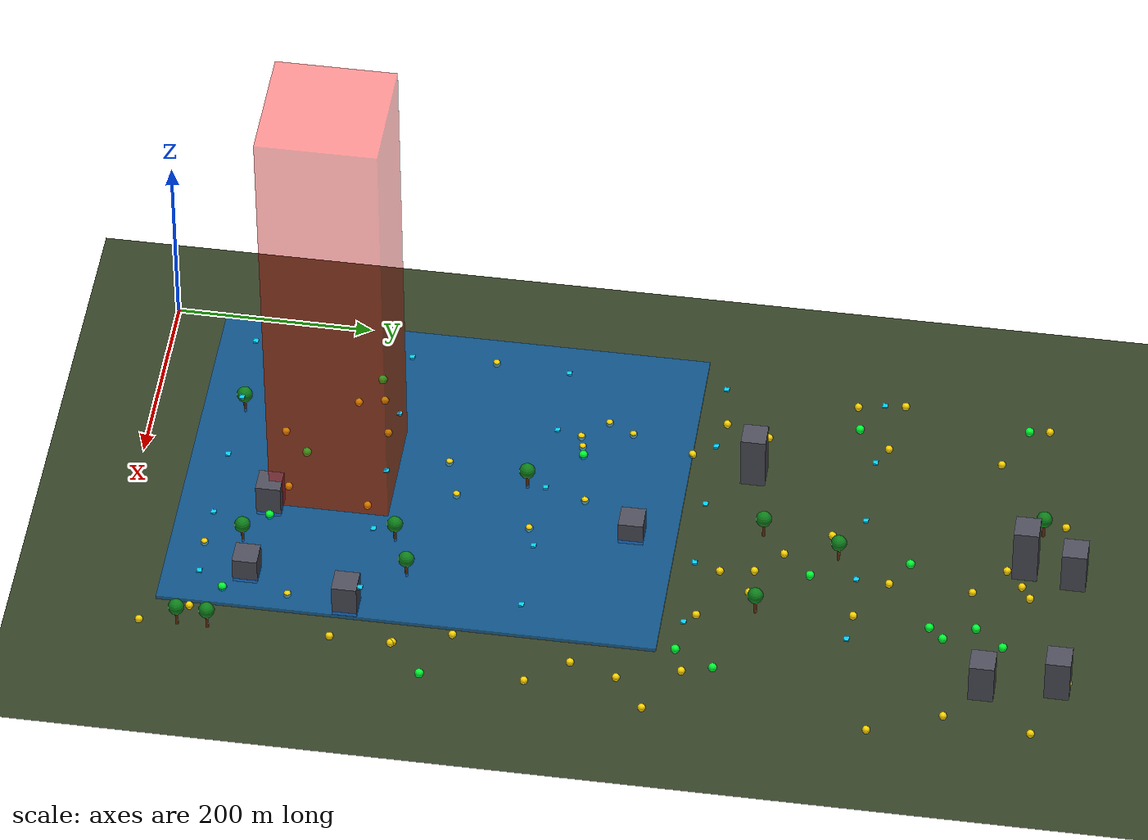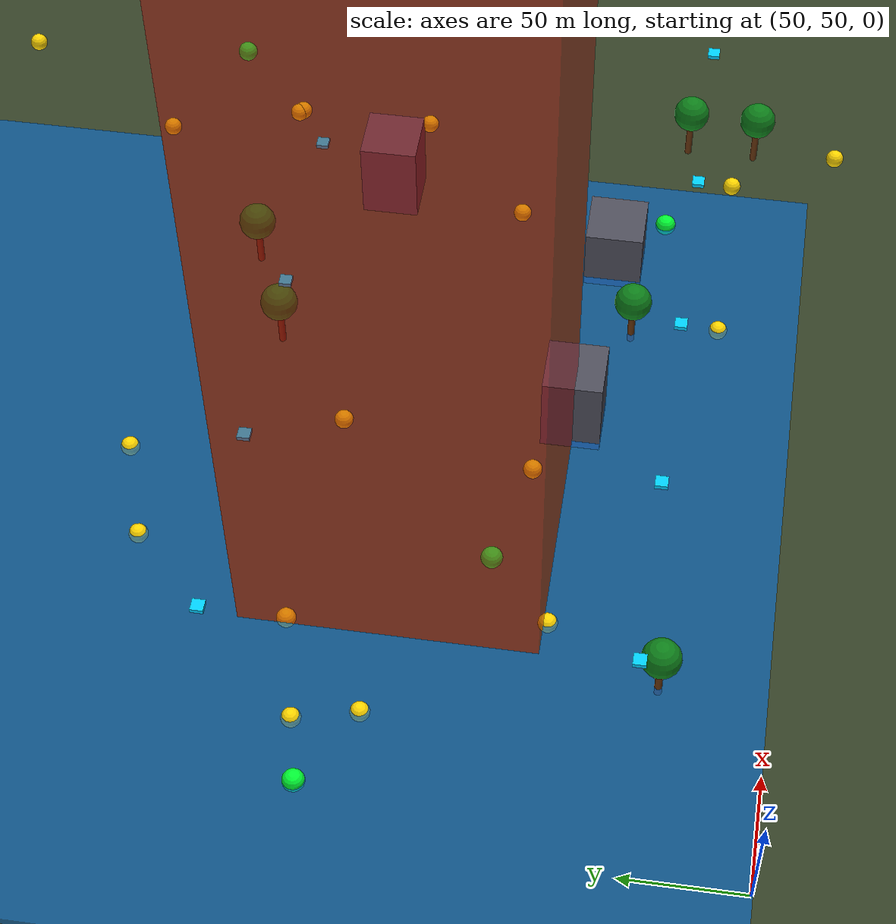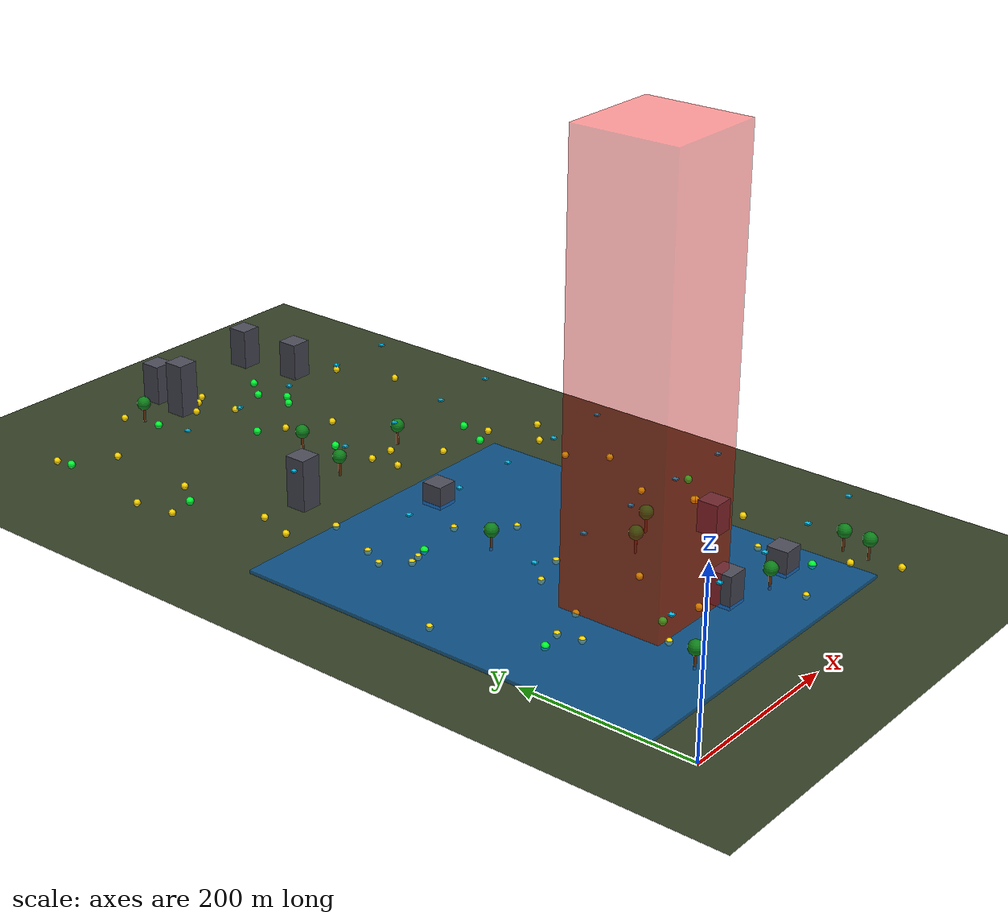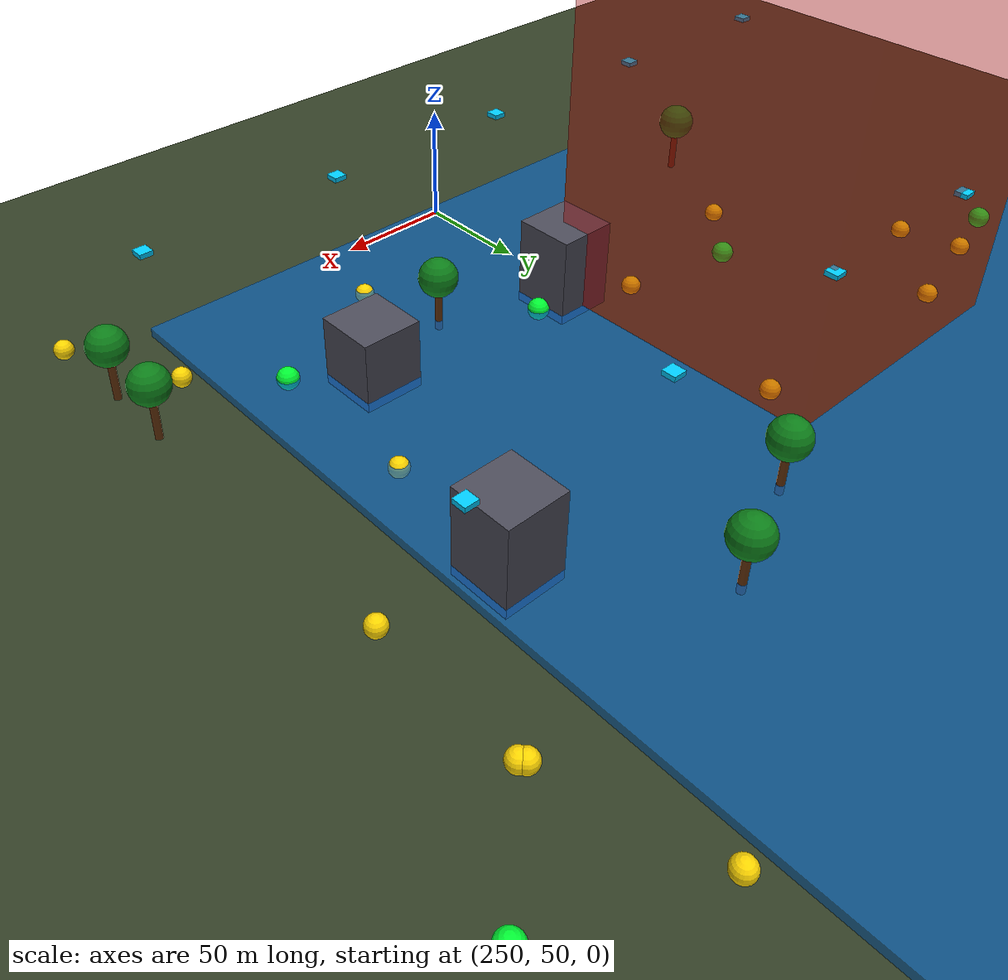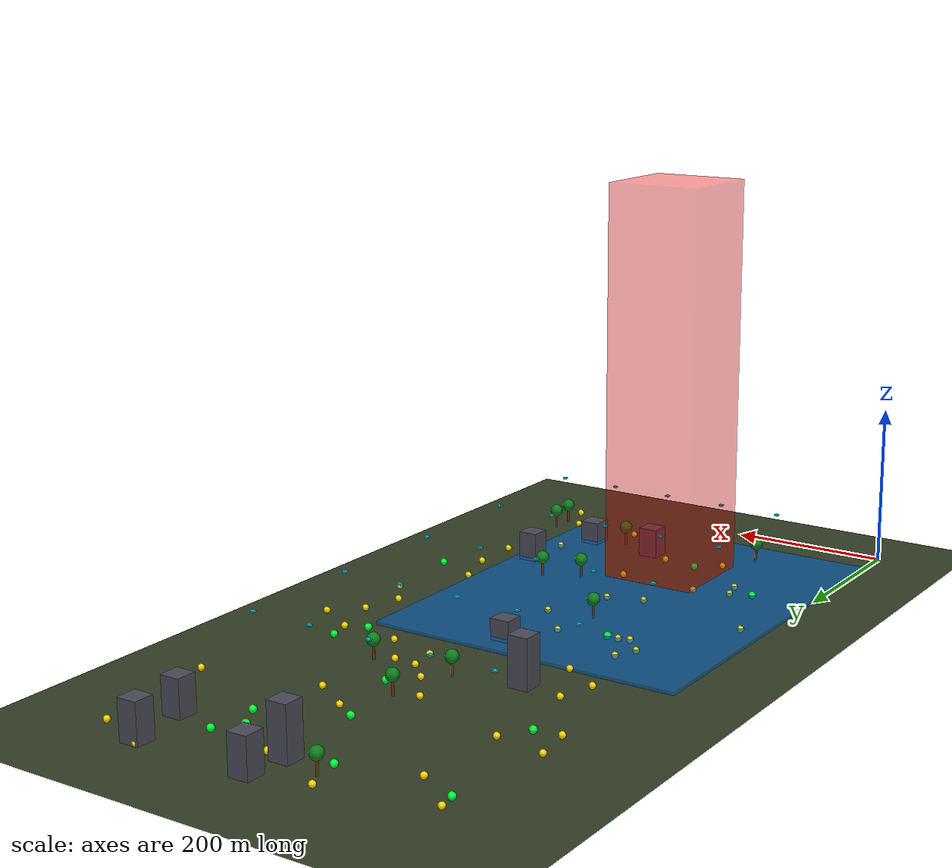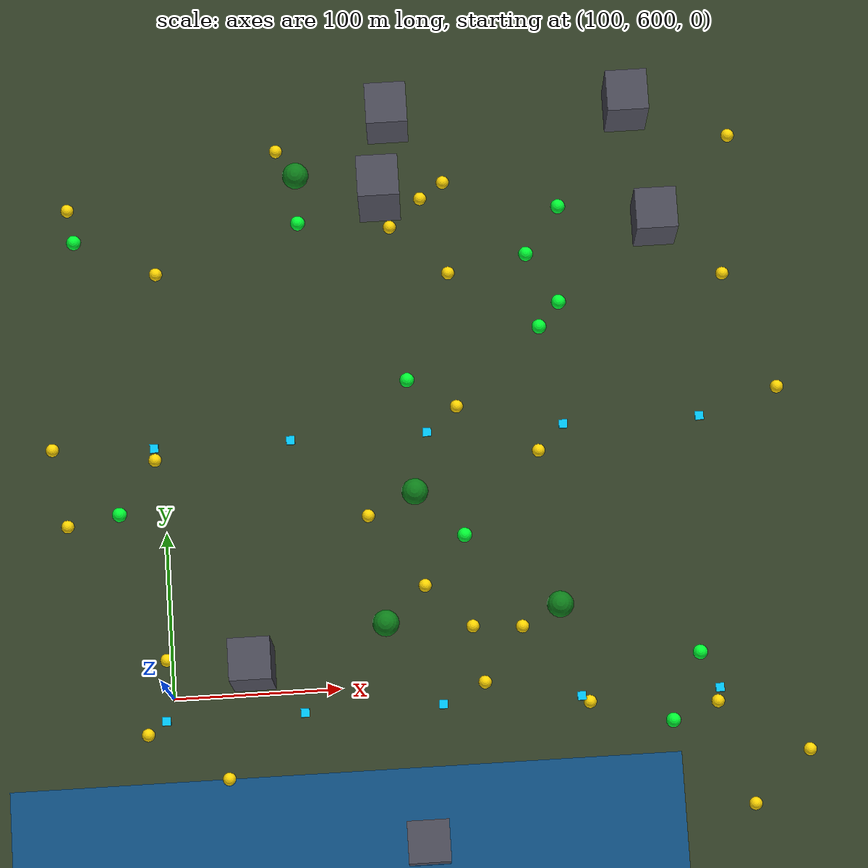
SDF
<sdf version="1.8">
 <world name="darar_world">
  <model name="ground_plane">
   <static>true</static>
   <pose>500 500 0 0 0 0</pose>
   <link name="link">
    <collision name="collision">
     <geometry><plane><normal>0 0 1</normal><size>1000 1000</size></plane></geometry>
    </collision>
    <visual name="visual">
     <geometry><plane><normal>0 0 1</normal><size>1000 1000</size></plane></geometry>
     <material><ambient>0.2 0.25 0.15 1</ambient><diffuse>0.2 0.25 0.15 1</diffuse></material>
    </visual>
   </link>
  </model>
  <model name="water_shallow">
   <static>true</static>
   <pose>200 300 2.0 0 0 0</pose>
   <link name="link">
    <visual name="vis">
     <geometry><box><size>400 500 4.0</size></box></geometry>
     <material><ambient>0 0.4 0.8 0.6</ambient><diffuse>0 0.4 0.8 0.6</diffuse></material>
    </visual>
   </link>
  </model>
  <model name="nfz_1">
   <static>true</static>
   <pose>200 200 250 0 0 0</pose>
   <link name="l">
    <visual name="v">
     <geometry><box><size>120 120 500</size></box></geometry>
     <material><ambient>1 0 0 0.4</ambient><diffuse>1 0 0 0.4</diffuse></material>
    </visual>
   </link>
  </model>
  <model name="tree_0">
   <static>true</static>
   <pose>250.9 712.8 12.0 0 0 0</pose>
   <link name="link">
    <visual name="trunk">
     <geometry><cylinder><radius>1.5</radius><length>24.0</length></cylinder></geometry>
     <material><ambient>0.4 0.2 0.05 1</ambient></material>
    </visual>
    <visual name="canopy">
     <pose>0 0 12 0 0 0</pose>
     <geometry><sphere><radius>8.0</radius></sphere></geometry>
     <material><ambient>0.05 0.5 0.1 1</ambient></material>
    </visual>
   </link>
  </model>
  <model name="tree_1">
   <static>true</static>
   <pose>429.7 76.8 12.0 0 0 0</pose>
   <link name="link">
    <visual name="trunk">
     <geometry><cylinder><radius>1.5</radius><length>24.0</length></cylinder></geometry>
     <material><ambient>0.4 0.2 0.05 1</ambient></material>
    </visual>
    <visual name="canopy">
     <pose>0 0 12 0 0 0</pose>
     <geometry><sphere><radius>8.0</radius></sphere></geometry>
     <material><ambient>0.05 0.5 0.1 1</ambient></material>
    </visual>
   </link>
  </model>
  <model name="static_building_2">
   <static>true</static>
   <pose>246.8 504.8 13.1 0 0 0</pose>
   <link name="link">
    <visual name="vis">
     <geometry><box><size>25 25 26.2</size></box></geometry>
     <material><ambient>0.3 0.3 0.35 1</ambient><diffuse>0.3 0.3 0.35 1</diffuse></material>
    </visual>
   </link>
  </model>
  <model name="tree_2">
   <static>true</static>
   <pose>229.0 634.9 12.0 0 0 0</pose>
   <link name="link">
    <visual name="trunk">
     <geometry><cylinder><radius>1.5</radius><length>24.0</length></cylinder></geometry>
     <material><ambient>0.4 0.2 0.05 1</ambient></material>
    </visual>
    <visual name="canopy">
     <pose>0 0 12 0 0 0</pose>
     <geometry><sphere><radius>8.0</radius></sphere></geometry>
     <material><ambient>0.05 0.5 0.1 1</ambient></material>
    </visual>
   </link>
  </model>
  <model name="tree_4">
   <static>true</static>
   <pose>189.9 911.5 12.0 0 0 0</pose>
   <link name="link">
    <visual name="trunk">
     <geometry><cylinder><radius>1.5</radius><length>24.0</length></cylinder></geometry>
     <material><ambient>0.4 0.2 0.05 1</ambient></material>
    </visual>
    <visual name="canopy">
     <pose>0 0 12 0 0 0</pose>
     <geometry><sphere><radius>8.0</radius></sphere></geometry>
     <material><ambient>0.05 0.5 0.1 1</ambient></material>
    </visual>
   </link>
  </model>
  <model name="static_building_5">
   <static>true</static>
   <pose>352.9 133.5 14.7 0 0 0</pose>
   <link name="link">
    <visual name="vis">
     <geometry><box><size>25 25 29.4</size></box></geometry>
     <material><ambient>0.3 0.3 0.35 1</ambient><diffuse>0.3 0.3 0.35 1</diffuse></material>
    </visual>
   </link>
  </model>
  <model name="tree_8">
   <static>true</static>
   <pose>310.4 121.8 12.0 0 0 0</pose>
   <link name="link">
    <visual name="trunk">
     <geometry><cylinder><radius>1.5</radius><length>24.0</length></cylinder></geometry>
     <material><ambient>0.4 0.2 0.05 1</ambient></material>
    </visual>
    <visual name="canopy">
     <pose>0 0 12 0 0 0</pose>
     <geometry><sphere><radius>8.0</radius></sphere></geometry>
     <material><ambient>0.05 0.5 0.1 1</ambient></material>
    </visual>
   </link>
  </model>
  <model name="static_building_9">
   <static>true</static>
   <pose>259.5 140.9 18.8 0 0 0</pose>
   <link name="link">
    <visual name="vis">
     <geometry><box><size>25 25 37.5</size></box></geometry>
     <material><ambient>0.3 0.3 0.35 1</ambient><diffuse>0.3 0.3 0.35 1</diffuse></material>
    </visual>
   </link>
  </model>
  <model name="static_building_10">
   <static>true</static>
   <pose>383.2 238.6 18.5 0 0 0</pose>
   <link name="link">
    <visual name="vis">
     <geometry><box><size>25 25 37.0</size></box></geometry>
     <material><ambient>0.3 0.3 0.35 1</ambient><diffuse>0.3 0.3 0.35 1</diffuse></material>
    </visual>
   </link>
  </model>
  <model name="tree_11">
   <static>true</static>
   <pose>197.1 391.5 12.0 0 0 0</pose>
   <link name="link">
    <visual name="trunk">
     <geometry><cylinder><radius>1.5</radius><length>24.0</length></cylinder></geometry>
     <material><ambient>0.4 0.2 0.05 1</ambient></material>
    </visual>
    <visual name="canopy">
     <pose>0 0 12 0 0 0</pose>
     <geometry><sphere><radius>8.0</radius></sphere></geometry>
     <material><ambient>0.05 0.5 0.1 1</ambient></material>
    </visual>
   </link>
  </model>
  <model name="tree_13">
   <static>true</static>
   <pose>333.9 291.0 12.0 0 0 0</pose>
   <link name="link">
    <visual name="trunk">
     <geometry><cylinder><radius>1.5</radius><length>24.0</length></cylinder></geometry>
     <material><ambient>0.4 0.2 0.05 1</ambient></material>
    </visual>
    <visual name="canopy">
     <pose>0 0 12 0 0 0</pose>
     <geometry><sphere><radius>8.0</radius></sphere></geometry>
     <material><ambient>0.05 0.5 0.1 1</ambient></material>
    </visual>
   </link>
  </model>
  <model name="static_building_14">
   <static>true</static>
   <pose>239.9 898.6 32.2 0 0 0</pose>
   <link name="link">
    <visual name="vis">
     <geometry><box><size>25 25 64.4</size></box></geometry>
     <material><ambient>0.3 0.3 0.35 1</ambient><diffuse>0.3 0.3 0.35 1</diffuse></material>
    </visual>
   </link>
  </model>
  <model name="tree_14">
   <static>true</static>
   <pose>333.2 639.9 12.0 0 0 0</pose>
   <link name="link">
    <visual name="trunk">
     <geometry><cylinder><radius>1.5</radius><length>24.0</length></cylinder></geometry>
     <material><ambient>0.4 0.2 0.05 1</ambient></material>
    </visual>
    <visual name="canopy">
     <pose>0 0 12 0 0 0</pose>
     <geometry><sphere><radius>8.0</radius></sphere></geometry>
     <material><ambient>0.05 0.5 0.1 1</ambient></material>
    </visual>
   </link>
  </model>
  <model name="static_building_15">
   <static>true</static>
   <pose>406.1 873.1 22.8 0 0 0</pose>
   <link name="link">
    <visual name="vis">
     <geometry><box><size>25 25 45.6</size></box></geometry>
     <material><ambient>0.3 0.3 0.35 1</ambient><diffuse>0.3 0.3 0.35 1</diffuse></material>
    </visual>
   </link>
  </model>
  <model name="tree_15">
   <static>true</static>
   <pose>288.4 272.0 12.0 0 0 0</pose>
   <link name="link">
    <visual name="trunk">
     <geometry><cylinder><radius>1.5</radius><length>24.0</length></cylinder></geometry>
     <material><ambient>0.4 0.2 0.05 1</ambient></material>
    </visual>
    <visual name="canopy">
     <pose>0 0 12 0 0 0</pose>
     <geometry><sphere><radius>8.0</radius></sphere></geometry>
     <material><ambient>0.05 0.5 0.1 1</ambient></material>
    </visual>
   </link>
  </model>
  <model name="static_building_17">
   <static>true</static>
   <pose>247.4 947.8 24.0 0 0 0</pose>
   <link name="link">
    <visual name="vis">
     <geometry><box><size>25 25 47.9</size></box></geometry>
     <material><ambient>0.3 0.3 0.35 1</ambient><diffuse>0.3 0.3 0.35 1</diffuse></material>
    </visual>
   </link>
  </model>
  <model name="tree_17">
   <static>true</static>
   <pose>131.8 92.4 12.0 0 0 0</pose>
   <link name="link">
    <visual name="trunk">
     <geometry><cylinder><radius>1.5</radius><length>24.0</length></cylinder></geometry>
     <material><ambient>0.4 0.2 0.05 1</ambient></material>
    </visual>
    <visual name="canopy">
     <pose>0 0 12 0 0 0</pose>
     <geometry><sphere><radius>8.0</radius></sphere></geometry>
     <material><ambient>0.05 0.5 0.1 1</ambient></material>
    </visual>
   </link>
  </model>
  <model name="static_building_18">
   <static>true</static>
   <pose>148.7 614.7 30.3 0 0 0</pose>
   <link name="link">
    <visual name="vis">
     <geometry><box><size>25 25 60.6</size></box></geometry>
     <material><ambient>0.3 0.3 0.35 1</ambient><diffuse>0.3 0.3 0.35 1</diffuse></material>
    </visual>
   </link>
  </model>
  <model name="tree_18">
   <static>true</static>
   <pose>429.9 107.2 12.0 0 0 0</pose>
   <link name="link">
    <visual name="trunk">
     <geometry><cylinder><radius>1.5</radius><length>24.0</length></cylinder></geometry>
     <material><ambient>0.4 0.2 0.05 1</ambient></material>
    </visual>
    <visual name="canopy">
     <pose>0 0 12 0 0 0</pose>
     <geometry><sphere><radius>8.0</radius></sphere></geometry>
     <material><ambient>0.05 0.5 0.1 1</ambient></material>
    </visual>
   </link>
  </model>
  <model name="static_building_19">
   <static>true</static>
   <pose>393.5 946.5 24.4 0 0 0</pose>
   <link name="link">
    <visual name="vis">
     <geometry><box><size>25 25 48.8</size></box></geometry>
     <material><ambient>0.3 0.3 0.35 1</ambient><diffuse>0.3 0.3 0.35 1</diffuse></material>
    </visual>
   </link>
  </model>
  <model name="static_victim_0">
   <static>true</static>
   <pose>40.8 707.5 3.0 0 0 0</pose>
   <link name="link">
    <visual name="vis">
     <geometry><sphere><radius>4.0</radius></sphere></geometry>
     <material><ambient>1 0.84 0 1</ambient><diffuse>1 0.84 0 1</diffuse></material>
    </visual>
   </link>
  </model>
  <model name="static_victim_2">
   <static>true</static>
   <pose>280.8 632.5 3.0 0 0 0</pose>
   <link name="link">
    <visual name="vis">
     <geometry><sphere><radius>4.0</radius></sphere></geometry>
     <material><ambient>1 0.84 0 1</ambient><diffuse>1 0.84 0 1</diffuse></material>
    </visual>
   </link>
  </model>
  <model name="static_victim_3">
   <static>true</static>
   <pose>134.9 438.7 2.0 0 0 0</pose>
   <link name="link">
    <visual name="vis">
     <geometry><sphere><radius>4.0</radius></sphere></geometry>
     <material><ambient>1 0.84 0 1</ambient><diffuse>1 0.84 0 1</diffuse></material>
    </visual>
   </link>
  </model>
  <model name="static_victim_4">
   <static>true</static>
   <pose>456.5 926.6 2.0 0 0 0</pose>
   <link name="link">
    <visual name="vis">
     <geometry><sphere><radius>4.0</radius></sphere></geometry>
     <material><ambient>1 0.84 0 1</ambient><diffuse>1 0.84 0 1</diffuse></material>
    </visual>
   </link>
  </model>
  <model name="static_victim_8">
   <static>true</static>
   <pose>310.5 630.6 3.0 0 0 0</pose>
   <link name="link">
    <visual name="vis">
     <geometry><sphere><radius>4.0</radius></sphere></geometry>
     <material><ambient>1 0.84 0 1</ambient><diffuse>1 0.84 0 1</diffuse></material>
    </visual>
   </link>
  </model>
  <model name="static_victim_12">
   <static>true</static>
   <pose>30.5 334.7 2.0 0 0 0</pose>
   <link name="link">
    <visual name="vis">
     <geometry><sphere><radius>4.0</radius></sphere></geometry>
     <material><ambient>1 0.84 0 1</ambient><diffuse>1 0.84 0 1</diffuse></material>
    </visual>
   </link>
  </model>
  <model name="static_victim_13">
   <static>true</static>
   <pose>48.3 903.4 3.0 0 0 0</pose>
   <link name="link">
    <visual name="vis">
     <geometry><sphere><radius>4.0</radius></sphere></geometry>
     <material><ambient>1 0.84 0 1</ambient><diffuse>1 0.84 0 1</diffuse></material>
    </visual>
   </link>
  </model>
  <model name="static_victim_15">
   <static>true</static>
   <pose>319.1 84.4 2.0 0 0 0</pose>
   <link name="link">
    <visual name="vis">
     <geometry><sphere><radius>4.0</radius></sphere></geometry>
     <material><ambient>1 0.84 0 1</ambient><diffuse>1 0.84 0 1</diffuse></material>
    </visual>
   </link>
  </model>
  <model name="static_victim_17">
   <static>true</static>
   <pose>110.5 486.8 2.0 0 0 0</pose>
   <link name="link">
    <visual name="vis">
     <geometry><sphere><radius>4.0</radius></sphere></geometry>
     <material><ambient>1 0.84 0 1</ambient><diffuse>1 0.84 0 1</diffuse></material>
    </visual>
   </link>
  </model>
  <model name="static_victim_18">
   <static>true</static>
   <pose>95.1 745.0 3.0 0 0 0</pose>
   <link name="link">
    <visual name="vis">
     <geometry><sphere><radius>4.0</radius></sphere></geometry>
     <material><ambient>1 0.84 0 1</ambient><diffuse>1 0.84 0 1</diffuse></material>
    </visual>
   </link>
  </model>
  <model name="static_victim_20">
   <static>true</static>
   <pose>476.8 546.8 2.0 0 0 0</pose>
   <link name="link">
    <visual name="vis">
     <geometry><sphere><radius>4.0</radius></sphere></geometry>
     <material><ambient>1 0.84 0 1</ambient><diffuse>1 0.84 0 1</diffuse></material>
    </visual>
   </link>
  </model>
  <model name="static_victim_21">
   <static>true</static>
   <pose>279.2 850.1 3.0 0 0 0</pose>
   <link name="link">
    <visual name="vis">
     <geometry><sphere><radius>4.0</radius></sphere></geometry>
     <material><ambient>1 0.84 0 1</ambient><diffuse>1 0.84 0 1</diffuse></material>
    </visual>
   </link>
  </model>
  <model name="static_victim_22">
   <static>true</static>
   <pose>427.7 229.1 3.0 0 0 0</pose>
   <link name="link">
    <visual name="vis">
     <geometry><sphere><radius>4.0</radius></sphere></geometry>
     <material><ambient>1 0.84 0 1</ambient><diffuse>1 0.84 0 1</diffuse></material>
    </visual>
   </link>
  </model>
  <model name="static_victim_24">
   <static>true</static>
   <pose>219.1 323.0 2.0 0 0 0</pose>
   <link name="link">
    <visual name="vis">
     <geometry><sphere><radius>4.0</radius></sphere></geometry>
     <material><ambient>1 0.84 0 1</ambient><diffuse>1 0.84 0 1</diffuse></material>
    </visual>
   </link>
  </model>
  <model name="static_victim_26">
   <static>true</static>
   <pose>441.8 516.5 3.0 0 0 0</pose>
   <link name="link">
    <visual name="vis">
     <geometry><sphere><radius>4.0</radius></sphere></geometry>
     <material><ambient>1 0.84 0 1</ambient><diffuse>1 0.84 0 1</diffuse></material>
    </visual>
   </link>
  </model>
  <model name="static_victim_27">
   <static>true</static>
   <pose>143.7 241.2 2.0 0 0 0</pose>
   <link name="link">
    <visual name="vis">
     <geometry><sphere><radius>4.0</radius></sphere></geometry>
     <material><ambient>1 0.84 0 1</ambient><diffuse>1 0.84 0 1</diffuse></material>
    </visual>
   </link>
  </model>
  <model name="static_victim_28">
   <static>true</static>
   <pose>347.8 583.0 3.0 0 0 0</pose>
   <link name="link">
    <visual name="vis">
     <geometry><sphere><radius>4.0</radius></sphere></geometry>
     <material><ambient>1 0.84 0 1</ambient><diffuse>1 0.84 0 1</diffuse></material>
    </visual>
   </link>
  </model>
  <model name="static_victim_29">
   <static>true</static>
   <pose>246.3 237.0 2.0 0 0 0</pose>
   <link name="link">
    <visual name="vis">
     <geometry><sphere><radius>4.0</radius></sphere></geometry>
     <material><ambient>1 0.84 0 1</ambient><diffuse>1 0.84 0 1</diffuse></material>
    </visual>
   </link>
  </model>
  <model name="static_victim_30">
   <static>true</static>
   <pose>96.7 623.2 3.0 0 0 0</pose>
   <link name="link">
    <visual name="vis">
     <geometry><sphere><radius>4.0</radius></sphere></geometry>
     <material><ambient>1 0.84 0 1</ambient><diffuse>1 0.84 0 1</diffuse></material>
    </visual>
   </link>
  </model>
  <model name="static_victim_31">
   <static>true</static>
   <pose>245.2 881.1 3.0 0 0 0</pose>
   <link name="link">
    <visual name="vis">
     <geometry><sphere><radius>4.0</radius></sphere></geometry>
     <material><ambient>1 0.84 0 1</ambient><diffuse>1 0.84 0 1</diffuse></material>
    </visual>
   </link>
  </model>
  <model name="static_victim_33">
   <static>true</static>
   <pose>253.7 658.8 3.0 0 0 0</pose>
   <link name="link">
    <visual name="vis">
     <geometry><sphere><radius>4.0</radius></sphere></geometry>
     <material><ambient>1 0.84 0 1</ambient><diffuse>1 0.84 0 1</diffuse></material>
    </visual>
   </link>
  </model>
  <model name="static_victim_34">
   <static>true</static>
   <pose>231.4 154.4 2.0 0 0 0</pose>
   <link name="link">
    <visual name="vis">
     <geometry><sphere><radius>4.0</radius></sphere></geometry>
     <material><ambient>1 0.84 0 1</ambient><diffuse>1 0.84 0 1</diffuse></material>
    </visual>
   </link>
  </model>
  <model name="static_victim_36">
   <static>true</static>
   <pose>474.3 767.5 2.0 0 0 0</pose>
   <link name="link">
    <visual name="vis">
     <geometry><sphere><radius>4.0</radius></sphere></geometry>
     <material><ambient>1 0.84 0 1</ambient><diffuse>1 0.84 0 1</diffuse></material>
    </visual>
   </link>
  </model>
  <model name="static_victim_38">
   <static>true</static>
   <pose>121.1 435.2 2.0 0 0 0</pose>
   <link name="link">
    <visual name="vis">
     <geometry><sphere><radius>4.0</radius></sphere></geometry>
     <material><ambient>1 0.84 0 1</ambient><diffuse>1 0.84 0 1</diffuse></material>
    </visual>
   </link>
  </model>
  <model name="static_victim_39">
   <static>true</static>
   <pose>428.2 469.0 3.0 0 0 0</pose>
   <link name="link">
    <visual name="vis">
     <geometry><sphere><radius>4.0</radius></sphere></geometry>
     <material><ambient>1 0.84 0 1</ambient><diffuse>1 0.84 0 1</diffuse></material>
    </visual>
   </link>
  </model>
  <model name="static_victim_42">
   <static>true</static>
   <pose>408.5 348.9 3.0 0 0 0</pose>
   <link name="link">
    <visual name="vis">
     <geometry><sphere><radius>4.0</radius></sphere></geometry>
     <material><ambient>1 0.84 0 1</ambient><diffuse>1 0.84 0 1</diffuse></material>
    </visual>
   </link>
  </model>
  <model name="static_victim_44">
   <static>true</static>
   <pose>208.8 451.7 2.0 0 0 0</pose>
   <link name="link">
    <visual name="vis">
     <geometry><sphere><radius>4.0</radius></sphere></geometry>
     <material><ambient>1 0.84 0 1</ambient><diffuse>1 0.84 0 1</diffuse></material>
    </visual>
   </link>
  </model>
  <model name="static_victim_45">
   <static>true</static>
   <pose>426.6 291.8 3.0 0 0 0</pose>
   <link name="link">
    <visual name="vis">
     <geometry><sphere><radius>4.0</radius></sphere></geometry>
     <material><ambient>1 0.84 0 1</ambient><diffuse>1 0.84 0 1</diffuse></material>
    </visual>
   </link>
  </model>
  <model name="static_victim_46">
   <static>true</static>
   <pose>264.8 897.9 3.0 0 0 0</pose>
   <link name="link">
    <visual name="vis">
     <geometry><sphere><radius>4.0</radius></sphere></geometry>
     <material><ambient>1 0.84 0 1</ambient><diffuse>1 0.84 0 1</diffuse></material>
    </visual>
   </link>
  </model>
  <model name="static_victim_47">
   <static>true</static>
   <pose>446.5 839.7 3.0 0 0 0</pose>
   <link name="link">
    <visual name="vis">
     <geometry><sphere><radius>4.0</radius></sphere></geometry>
     <material><ambient>1 0.84 0 1</ambient><diffuse>1 0.84 0 1</diffuse></material>
    </visual>
   </link>
  </model>
  <model name="static_victim_53">
   <static>true</static>
   <pose>407.0 85.1 3.0 0 0 0</pose>
   <link name="link">
    <visual name="vis">
     <geometry><sphere><radius>4.0</radius></sphere></geometry>
     <material><ambient>1 0.84 0 1</ambient><diffuse>1 0.84 0 1</diffuse></material>
    </visual>
   </link>
  </model>
  <model name="static_victim_54">
   <static>true</static>
   <pose>386.2 956.2 3.0 0 0 0</pose>
   <link name="link">
    <visual name="vis">
     <geometry><sphere><radius>4.0</radius></sphere></geometry>
     <material><ambient>1 0.84 0 1</ambient><diffuse>1 0.84 0 1</diffuse></material>
    </visual>
   </link>
  </model>
  <model name="static_victim_55">
   <static>true</static>
   <pose>279.3 767.0 3.0 0 0 0</pose>
   <link name="link">
    <visual name="vis">
     <geometry><sphere><radius>4.0</radius></sphere></geometry>
     <material><ambient>1 0.84 0 1</ambient><diffuse>1 0.84 0 1</diffuse></material>
    </visual>
   </link>
  </model>
  <model name="static_victim_56">
   <static>true</static>
   <pose>457.7 427.6 2.0 0 0 0</pose>
   <link name="link">
    <visual name="vis">
     <geometry><sphere><radius>4.0</radius></sphere></geometry>
     <material><ambient>1 0.84 0 1</ambient><diffuse>1 0.84 0 1</diffuse></material>
    </visual>
   </link>
  </model>
  <model name="static_victim_59">
   <static>true</static>
   <pose>175.5 308.9 2.0 0 0 0</pose>
   <link name="link">
    <visual name="vis">
     <geometry><sphere><radius>4.0</radius></sphere></geometry>
     <material><ambient>1 0.84 0 1</ambient><diffuse>1 0.84 0 1</diffuse></material>
    </visual>
   </link>
  </model>
  <model name="static_victim_62">
   <static>true</static>
   <pose>83.7 579.1 3.0 0 0 0</pose>
   <link name="link">
    <visual name="vis">
     <geometry><sphere><radius>4.0</radius></sphere></geometry>
     <material><ambient>1 0.84 0 1</ambient><diffuse>1 0.84 0 1</diffuse></material>
    </visual>
   </link>
  </model>
  <model name="static_victim_64">
   <static>true</static>
   <pose>178.0 933.1 3.0 0 0 0</pose>
   <link name="link">
    <visual name="vis">
     <geometry><sphere><radius>4.0</radius></sphere></geometry>
     <material><ambient>1 0.84 0 1</ambient><diffuse>1 0.84 0 1</diffuse></material>
    </visual>
   </link>
  </model>
  <model name="static_victim_65">
   <static>true</static>
   <pose>105.3 204.7 2.0 0 0 0</pose>
   <link name="link">
    <visual name="vis">
     <geometry><sphere><radius>4.0</radius></sphere></geometry>
     <material><ambient>1 0.84 0 1</ambient><diffuse>1 0.84 0 1</diffuse></material>
    </visual>
   </link>
  </model>
  <model name="static_victim_67">
   <static>true</static>
   <pose>251.1 142.7 2.0 0 0 0</pose>
   <link name="link">
    <visual name="vis">
     <geometry><sphere><radius>4.0</radius></sphere></geometry>
     <material><ambient>1 0.84 0 1</ambient><diffuse>1 0.84 0 1</diffuse></material>
    </visual>
   </link>
  </model>
  <model name="static_victim_70">
   <static>true</static>
   <pose>424.1 578.7 3.0 0 0 0</pose>
   <link name="link">
    <visual name="vis">
     <geometry><sphere><radius>4.0</radius></sphere></geometry>
     <material><ambient>1 0.84 0 1</ambient><diffuse>1 0.84 0 1</diffuse></material>
    </visual>
   </link>
  </model>
  <model name="static_victim_72">
   <static>true</static>
   <pose>222.0 703.2 3.0 0 0 0</pose>
   <link name="link">
    <visual name="vis">
     <geometry><sphere><radius>4.0</radius></sphere></geometry>
     <material><ambient>1 0.84 0 1</ambient><diffuse>1 0.84 0 1</diffuse></material>
    </visual>
   </link>
  </model>
  <model name="static_victim_73">
   <static>true</static>
   <pose>254.4 402.0 2.0 0 0 0</pose>
   <link name="link">
    <visual name="vis">
     <geometry><sphere><radius>4.0</radius></sphere></geometry>
     <material><ambient>1 0.84 0 1</ambient><diffuse>1 0.84 0 1</diffuse></material>
    </visual>
   </link>
  </model>
  <model name="static_victim_75">
   <static>true</static>
   <pose>327.2 736.8 3.0 0 0 0</pose>
   <link name="link">
    <visual name="vis">
     <geometry><sphere><radius>4.0</radius></sphere></geometry>
     <material><ambient>1 0.84 0 1</ambient><diffuse>1 0.84 0 1</diffuse></material>
    </visual>
   </link>
  </model>
  <model name="static_victim_76">
   <static>true</static>
   <pose>98.2 460.8 2.0 0 0 0</pose>
   <link name="link">
    <visual name="vis">
     <geometry><sphere><radius>4.0</radius></sphere></geometry>
     <material><ambient>1 0.84 0 1</ambient><diffuse>1 0.84 0 1</diffuse></material>
    </visual>
   </link>
  </model>
  <model name="static_victim_78">
   <static>true</static>
   <pose>98.9 230.4 2.0 0 0 0</pose>
   <link name="link">
    <visual name="vis">
     <geometry><sphere><radius>4.0</radius></sphere></geometry>
     <material><ambient>1 0.84 0 1</ambient><diffuse>1 0.84 0 1</diffuse></material>
    </visual>
   </link>
  </model>
  <model name="static_victim_79">
   <static>true</static>
   <pose>279.3 907.3 3.0 0 0 0</pose>
   <link name="link">
    <visual name="vis">
     <geometry><sphere><radius>4.0</radius></sphere></geometry>
     <material><ambient>1 0.84 0 1</ambient><diffuse>1 0.84 0 1</diffuse></material>
    </visual>
   </link>
  </model>
  <model name="static_victim_81">
   <static>true</static>
   <pose>377.4 178.3 2.0 0 0 0</pose>
   <link name="link">
    <visual name="vis">
     <geometry><sphere><radius>4.0</radius></sphere></geometry>
     <material><ambient>1 0.84 0 1</ambient><diffuse>1 0.84 0 1</diffuse></material>
    </visual>
   </link>
  </model>
  <model name="static_victim_87">
   <static>true</static>
   <pose>156.2 138.5 2.0 0 0 0</pose>
   <link name="link">
    <visual name="vis">
     <geometry><sphere><radius>4.0</radius></sphere></geometry>
     <material><ambient>1 0.84 0 1</ambient><diffuse>1 0.84 0 1</diffuse></material>
    </visual>
   </link>
  </model>
  <model name="static_victim_88">
   <static>true</static>
   <pose>130.6 550.0 3.0 0 0 0</pose>
   <link name="link">
    <visual name="vis">
     <geometry><sphere><radius>4.0</radius></sphere></geometry>
     <material><ambient>1 0.84 0 1</ambient><diffuse>1 0.84 0 1</diffuse></material>
    </visual>
   </link>
  </model>
  <model name="static_victim_89">
   <static>true</static>
   <pose>286.0 598.5 3.0 0 0 0</pose>
   <link name="link">
    <visual name="vis">
     <geometry><sphere><radius>4.0</radius></sphere></geometry>
     <material><ambient>1 0.84 0 1</ambient><diffuse>1 0.84 0 1</diffuse></material>
    </visual>
   </link>
  </model>
  <model name="static_victim_94">
   <static>true</static>
   <pose>428.2 290.1 3.0 0 0 0</pose>
   <link name="link">
    <visual name="vis">
     <geometry><sphere><radius>4.0</radius></sphere></geometry>
     <material><ambient>1 0.84 0 1</ambient><diffuse>1 0.84 0 1</diffuse></material>
    </visual>
   </link>
  </model>
  <model name="static_victim_95">
   <static>true</static>
   <pose>33.3 754.9 3.0 0 0 0</pose>
   <link name="link">
    <visual name="vis">
     <geometry><sphere><radius>4.0</radius></sphere></geometry>
     <material><ambient>1 0.84 0 1</ambient><diffuse>1 0.84 0 1</diffuse></material>
    </visual>
   </link>
  </model>
  <model name="static_victim_98">
   <static>true</static>
   <pose>432.0 39.1 3.0 0 0 0</pose>
   <link name="link">
    <visual name="vis">
     <geometry><sphere><radius>4.0</radius></sphere></geometry>
     <material><ambient>1 0.84 0 1</ambient><diffuse>1 0.84 0 1</diffuse></material>
    </visual>
   </link>
  </model>
  <model name="static_victim_99">
   <static>true</static>
   <pose>100.7 860.1 3.0 0 0 0</pose>
   <link name="link">
    <visual name="vis">
     <geometry><sphere><radius>4.0</radius></sphere></geometry>
     <material><ambient>1 0.84 0 1</ambient><diffuse>1 0.84 0 1</diffuse></material>
    </visual>
   </link>
  </model>
  <model name="dynamic_victim_2">
   <pose>183.3 164.7 3.5 0 0 0</pose>
   <link name="link">
    <visual name="vis">
     <geometry><sphere><radius>4.5</radius></sphere></geometry>
     <material><ambient>0 1 0.2 1</ambient><diffuse>0 1 0.2 1</diffuse></material>
    </visual>
   </link>
   <plugin filename="gz-sim-velocity-control-system" name="gz::sim::systems::VelocityControl">
    <topic>/model/dynamic_victim_2/cmd_vel</topic>
   </plugin>
  </model>
  <model name="dynamic_victim_3">
   <pose>327.4 859.1 3.5 0 0 0</pose>
   <link name="link">
    <visual name="vis">
     <geometry><sphere><radius>4.5</radius></sphere></geometry>
     <material><ambient>0 1 0.2 1</ambient><diffuse>0 1 0.2 1</diffuse></material>
    </visual>
   </link>
   <plugin filename="gz-sim-velocity-control-system" name="gz::sim::systems::VelocityControl">
    <topic>/model/dynamic_victim_3/cmd_vel</topic>
   </plugin>
  </model>
  <model name="dynamic_victim_6">
   <pose>274.6 142.5 3.5 0 0 0</pose>
   <link name="link">
    <visual name="vis">
     <geometry><sphere><radius>4.5</radius></sphere></geometry>
     <material><ambient>0 1 0.2 1</ambient><diffuse>0 1 0.2 1</diffuse></material>
    </visual>
   </link>
   <plugin filename="gz-sim-velocity-control-system" name="gz::sim::systems::VelocityControl">
    <topic>/model/dynamic_victim_6/cmd_vel</topic>
   </plugin>
  </model>
  <model name="dynamic_victim_8">
   <pose>415.7 608.6 3.5 0 0 0</pose>
   <link name="link">
    <visual name="vis">
     <geometry><sphere><radius>4.5</radius></sphere></geometry>
     <material><ambient>0 1 0.2 1</ambient><diffuse>0 1 0.2 1</diffuse></material>
    </visual>
   </link>
   <plugin filename="gz-sim-velocity-control-system" name="gz::sim::systems::VelocityControl">
    <topic>/model/dynamic_victim_8/cmd_vel</topic>
   </plugin>
  </model>
  <model name="dynamic_victim_9">
   <pose>189.1 886.9 3.5 0 0 0</pose>
   <link name="link">
    <visual name="vis">
     <geometry><sphere><radius>4.5</radius></sphere></geometry>
     <material><ambient>0 1 0.2 1</ambient><diffuse>0 1 0.2 1</diffuse></material>
    </visual>
   </link>
   <plugin filename="gz-sim-velocity-control-system" name="gz::sim::systems::VelocityControl">
    <topic>/model/dynamic_victim_9/cmd_vel</topic>
   </plugin>
  </model>
  <model name="dynamic_victim_12">
   <pose>72.3 712.9 3.5 0 0 0</pose>
   <link name="link">
    <visual name="vis">
     <geometry><sphere><radius>4.5</radius></sphere></geometry>
     <material><ambient>0 1 0.2 1</ambient><diffuse>0 1 0.2 1</diffuse></material>
    </visual>
   </link>
   <plugin filename="gz-sim-velocity-control-system" name="gz::sim::systems::VelocityControl">
    <topic>/model/dynamic_victim_12/cmd_vel</topic>
   </plugin>
  </model>
  <model name="dynamic_victim_13">
   <pose>349.0 887.7 3.5 0 0 0</pose>
   <link name="link">
    <visual name="vis">
     <geometry><sphere><radius>4.5</radius></sphere></geometry>
     <material><ambient>0 1 0.2 1</ambient><diffuse>0 1 0.2 1</diffuse></material>
    </visual>
   </link>
   <plugin filename="gz-sim-velocity-control-system" name="gz::sim::systems::VelocityControl">
    <topic>/model/dynamic_victim_13/cmd_vel</topic>
   </plugin>
  </model>
  <model name="dynamic_victim_18">
   <pose>250.2 784.9 3.5 0 0 0</pose>
   <link name="link">
    <visual name="vis">
     <geometry><sphere><radius>4.5</radius></sphere></geometry>
     <material><ambient>0 1 0.2 1</ambient><diffuse>0 1 0.2 1</diffuse></material>
    </visual>
   </link>
   <plugin filename="gz-sim-velocity-control-system" name="gz::sim::systems::VelocityControl">
    <topic>/model/dynamic_victim_18/cmd_vel</topic>
   </plugin>
  </model>
  <model name="dynamic_victim_19">
   <pose>464.3 324.7 3.5 0 0 0</pose>
   <link name="link">
    <visual name="vis">
     <geometry><sphere><radius>4.5</radius></sphere></geometry>
     <material><ambient>0 1 0.2 1</ambient><diffuse>0 1 0.2 1</diffuse></material>
    </visual>
   </link>
   <plugin filename="gz-sim-velocity-control-system" name="gz::sim::systems::VelocityControl">
    <topic>/model/dynamic_victim_19/cmd_vel</topic>
   </plugin>
  </model>
  <model name="dynamic_victim_21">
   <pose>71.3 223.8 3.5 0 0 0</pose>
   <link name="link">
    <visual name="vis">
     <geometry><sphere><radius>4.5</radius></sphere></geometry>
     <material><ambient>0 1 0.2 1</ambient><diffuse>0 1 0.2 1</diffuse></material>
    </visual>
   </link>
   <plugin filename="gz-sim-velocity-control-system" name="gz::sim::systems::VelocityControl">
    <topic>/model/dynamic_victim_21/cmd_vel</topic>
   </plugin>
  </model>
  <model name="dynamic_victim_22">
   <pose>345.4 827.9 3.5 0 0 0</pose>
   <link name="link">
    <visual name="vis">
     <geometry><sphere><radius>4.5</radius></sphere></geometry>
     <material><ambient>0 1 0.2 1</ambient><diffuse>0 1 0.2 1</diffuse></material>
    </visual>
   </link>
   <plugin filename="gz-sim-velocity-control-system" name="gz::sim::systems::VelocityControl">
    <topic>/model/dynamic_victim_22/cmd_vel</topic>
   </plugin>
  </model>
  <model name="dynamic_victim_29">
   <pose>147.6 441.1 3.5 0 0 0</pose>
   <link name="link">
    <visual name="vis">
     <geometry><sphere><radius>4.5</radius></sphere></geometry>
     <material><ambient>0 1 0.2 1</ambient><diffuse>0 1 0.2 1</diffuse></material>
    </visual>
   </link>
   <plugin filename="gz-sim-velocity-control-system" name="gz::sim::systems::VelocityControl">
    <topic>/model/dynamic_victim_29/cmd_vel</topic>
   </plugin>
  </model>
  <model name="dynamic_victim_32">
   <pose>396.7 568.9 3.5 0 0 0</pose>
   <link name="link">
    <visual name="vis">
     <geometry><sphere><radius>4.5</radius></sphere></geometry>
     <material><ambient>0 1 0.2 1</ambient><diffuse>0 1 0.2 1</diffuse></material>
    </visual>
   </link>
   <plugin filename="gz-sim-velocity-control-system" name="gz::sim::systems::VelocityControl">
    <topic>/model/dynamic_victim_32/cmd_vel</topic>
   </plugin>
  </model>
  <model name="dynamic_victim_33">
   <pose>279.3 687.9 3.5 0 0 0</pose>
   <link name="link">
    <visual name="vis">
     <geometry><sphere><radius>4.5</radius></sphere></geometry>
     <material><ambient>0 1 0.2 1</ambient><diffuse>0 1 0.2 1</diffuse></material>
    </visual>
   </link>
   <plugin filename="gz-sim-velocity-control-system" name="gz::sim::systems::VelocityControl">
    <topic>/model/dynamic_victim_33/cmd_vel</topic>
   </plugin>
  </model>
  <model name="dynamic_victim_34">
   <pose>51.5 883.0 3.5 0 0 0</pose>
   <link name="link">
    <visual name="vis">
     <geometry><sphere><radius>4.5</radius></sphere></geometry>
     <material><ambient>0 1 0.2 1</ambient><diffuse>0 1 0.2 1</diffuse></material>
    </visual>
   </link>
   <plugin filename="gz-sim-velocity-control-system" name="gz::sim::systems::VelocityControl">
    <topic>/model/dynamic_victim_34/cmd_vel</topic>
   </plugin>
  </model>
  <model name="dynamic_victim_37">
   <pose>377.8 113.0 3.5 0 0 0</pose>
   <link name="link">
    <visual name="vis">
     <geometry><sphere><radius>4.5</radius></sphere></geometry>
     <material><ambient>0 1 0.2 1</ambient><diffuse>0 1 0.2 1</diffuse></material>
    </visual>
   </link>
   <plugin filename="gz-sim-velocity-control-system" name="gz::sim::systems::VelocityControl">
    <topic>/model/dynamic_victim_37/cmd_vel</topic>
   </plugin>
  </model>
  <model name="dynamic_victim_39">
   <pose>332.5 813.2 3.5 0 0 0</pose>
   <link name="link">
    <visual name="vis">
     <geometry><sphere><radius>4.5</radius></sphere></geometry>
     <material><ambient>0 1 0.2 1</ambient><diffuse>0 1 0.2 1</diffuse></material>
    </visual>
   </link>
   <plugin filename="gz-sim-velocity-control-system" name="gz::sim::systems::VelocityControl">
    <topic>/model/dynamic_victim_39/cmd_vel</topic>
   </plugin>
  </model>
  <model name="uav_0">
   <pose>100.0 100.0 70.0 0 0 0</pose>
   <link name="link">
    <visual name="vis">
     <geometry><box><size>5 5 1.8</size></box></geometry>
     <material><ambient>0 0.8 1 1</ambient><diffuse>0 0.8 1 1</diffuse></material>
    </visual>
   </link>
   <plugin filename="gz-sim-velocity-control-system" name="gz::sim::systems::VelocityControl">
    <topic>/model/uav_0/cmd_vel</topic>
   </plugin>
  </model>
  <model name="uav_1">
   <pose>180.0 100.0 70.0 0 0 0</pose>
   <link name="link">
    <visual name="vis">
     <geometry><box><size>5 5 1.8</size></box></geometry>
     <material><ambient>0 0.8 1 1</ambient><diffuse>0 0.8 1 1</diffuse></material>
    </visual>
   </link>
   <plugin filename="gz-sim-velocity-control-system" name="gz::sim::systems::VelocityControl">
    <topic>/model/uav_1/cmd_vel</topic>
   </plugin>
  </model>
  <model name="uav_2">
   <pose>260.0 100.0 70.0 0 0 0</pose>
   <link name="link">
    <visual name="vis">
     <geometry><box><size>5 5 1.8</size></box></geometry>
     <material><ambient>0 0.8 1 1</ambient><diffuse>0 0.8 1 1</diffuse></material>
    </visual>
   </link>
   <plugin filename="gz-sim-velocity-control-system" name="gz::sim::systems::VelocityControl">
    <topic>/model/uav_2/cmd_vel</topic>
   </plugin>
  </model>
  <model name="uav_3">
   <pose>340.0 100.0 70.0 0 0 0</pose>
   <link name="link">
    <visual name="vis">
     <geometry><box><size>5 5 1.8</size></box></geometry>
     <material><ambient>0 0.8 1 1</ambient><diffuse>0 0.8 1 1</diffuse></material>
    </visual>
   </link>
   <plugin filename="gz-sim-velocity-control-system" name="gz::sim::systems::VelocityControl">
    <topic>/model/uav_3/cmd_vel</topic>
   </plugin>
  </model>
  <model name="uav_4">
   <pose>420.0 100.0 70.0 0 0 0</pose>
   <link name="link">
    <visual name="vis">
     <geometry><box><size>5 5 1.8</size></box></geometry>
     <material><ambient>0 0.8 1 1</ambient><diffuse>0 0.8 1 1</diffuse></material>
    </visual>
   </link>
   <plugin filename="gz-sim-velocity-control-system" name="gz::sim::systems::VelocityControl">
    <topic>/model/uav_4/cmd_vel</topic>
   </plugin>
  </model>
  <model name="uav_10">
   <pose>100.0 260.0 70.0 0 0 0</pose>
   <link name="link">
    <visual name="vis">
     <geometry><box><size>5 5 1.8</size></box></geometry>
     <material><ambient>0 0.8 1 1</ambient><diffuse>0 0.8 1 1</diffuse></material>
    </visual>
   </link>
   <plugin filename="gz-sim-velocity-control-system" name="gz::sim::systems::VelocityControl">
    <topic>/model/uav_10/cmd_vel</topic>
   </plugin>
  </model>
  <model name="uav_11">
   <pose>180.0 260.0 70.0 0 0 0</pose>
   <link name="link">
    <visual name="vis">
     <geometry><box><size>5 5 1.8</size></box></geometry>
     <material><ambient>0 0.8 1 1</ambient><diffuse>0 0.8 1 1</diffuse></material>
    </visual>
   </link>
   <plugin filename="gz-sim-velocity-control-system" name="gz::sim::systems::VelocityControl">
    <topic>/model/uav_11/cmd_vel</topic>
   </plugin>
  </model>
  <model name="uav_12">
   <pose>260.0 260.0 70.0 0 0 0</pose>
   <link name="link">
    <visual name="vis">
     <geometry><box><size>5 5 1.8</size></box></geometry>
     <material><ambient>0 0.8 1 1</ambient><diffuse>0 0.8 1 1</diffuse></material>
    </visual>
   </link>
   <plugin filename="gz-sim-velocity-control-system" name="gz::sim::systems::VelocityControl">
    <topic>/model/uav_12/cmd_vel</topic>
   </plugin>
  </model>
  <model name="uav_13">
   <pose>340.0 260.0 70.0 0 0 0</pose>
   <link name="link">
    <visual name="vis">
     <geometry><box><size>5 5 1.8</size></box></geometry>
     <material><ambient>0 0.8 1 1</ambient><diffuse>0 0.8 1 1</diffuse></material>
    </visual>
   </link>
   <plugin filename="gz-sim-velocity-control-system" name="gz::sim::systems::VelocityControl">
    <topic>/model/uav_13/cmd_vel</topic>
   </plugin>
  </model>
  <model name="uav_14">
   <pose>420.0 260.0 70.0 0 0 0</pose>
   <link name="link">
    <visual name="vis">
     <geometry><box><size>5 5 1.8</size></box></geometry>
     <material><ambient>0 0.8 1 1</ambient><diffuse>0 0.8 1 1</diffuse></material>
    </visual>
   </link>
   <plugin filename="gz-sim-velocity-control-system" name="gz::sim::systems::VelocityControl">
    <topic>/model/uav_14/cmd_vel</topic>
   </plugin>
  </model>
  <model name="uav_20">
   <pose>100.0 420.0 70.0 0 0 0</pose>
   <link name="link">
    <visual name="vis">
     <geometry><box><size>5 5 1.8</size></box></geometry>
     <material><ambient>0 0.8 1 1</ambient><diffuse>0 0.8 1 1</diffuse></material>
    </visual>
   </link>
   <plugin filename="gz-sim-velocity-control-system" name="gz::sim::systems::VelocityControl">
    <topic>/model/uav_20/cmd_vel</topic>
   </plugin>
  </model>
  <model name="uav_21">
   <pose>180.0 420.0 70.0 0 0 0</pose>
   <link name="link">
    <visual name="vis">
     <geometry><box><size>5 5 1.8</size></box></geometry>
     <material><ambient>0 0.8 1 1</ambient><diffuse>0 0.8 1 1</diffuse></material>
    </visual>
   </link>
   <plugin filename="gz-sim-velocity-control-system" name="gz::sim::systems::VelocityControl">
    <topic>/model/uav_21/cmd_vel</topic>
   </plugin>
  </model>
  <model name="uav_22">
   <pose>260.0 420.0 70.0 0 0 0</pose>
   <link name="link">
    <visual name="vis">
     <geometry><box><size>5 5 1.8</size></box></geometry>
     <material><ambient>0 0.8 1 1</ambient><diffuse>0 0.8 1 1</diffuse></material>
    </visual>
   </link>
   <plugin filename="gz-sim-velocity-control-system" name="gz::sim::systems::VelocityControl">
    <topic>/model/uav_22/cmd_vel</topic>
   </plugin>
  </model>
  <model name="uav_23">
   <pose>340.0 420.0 70.0 0 0 0</pose>
   <link name="link">
    <visual name="vis">
     <geometry><box><size>5 5 1.8</size></box></geometry>
     <material><ambient>0 0.8 1 1</ambient><diffuse>0 0.8 1 1</diffuse></material>
    </visual>
   </link>
   <plugin filename="gz-sim-velocity-control-system" name="gz::sim::systems::VelocityControl">
    <topic>/model/uav_23/cmd_vel</topic>
   </plugin>
  </model>
  <model name="uav_24">
   <pose>420.0 420.0 70.0 0 0 0</pose>
   <link name="link">
    <visual name="vis">
     <geometry><box><size>5 5 1.8</size></box></geometry>
     <material><ambient>0 0.8 1 1</ambient><diffuse>0 0.8 1 1</diffuse></material>
    </visual>
   </link>
   <plugin filename="gz-sim-velocity-control-system" name="gz::sim::systems::VelocityControl">
    <topic>/model/uav_24/cmd_vel</topic>
   </plugin>
  </model>
  <model name="uav_30">
   <pose>100.0 580.0 70.0 0 0 0</pose>
   <link name="link">
    <visual name="vis">
     <geometry><box><size>5 5 1.8</size></box></geometry>
     <material><ambient>0 0.8 1 1</ambient><diffuse>0 0.8 1 1</diffuse></material>
    </visual>
   </link>
   <plugin filename="gz-sim-velocity-control-system" name="gz::sim::systems::VelocityControl">
    <topic>/model/uav_30/cmd_vel</topic>
   </plugin>
  </model>
  <model name="uav_31">
   <pose>180.0 580.0 70.0 0 0 0</pose>
   <link name="link">
    <visual name="vis">
     <geometry><box><size>5 5 1.8</size></box></geometry>
     <material><ambient>0 0.8 1 1</ambient><diffuse>0 0.8 1 1</diffuse></material>
    </visual>
   </link>
   <plugin filename="gz-sim-velocity-control-system" name="gz::sim::systems::VelocityControl">
    <topic>/model/uav_31/cmd_vel</topic>
   </plugin>
  </model>
  <model name="uav_32">
   <pose>260.0 580.0 70.0 0 0 0</pose>
   <link name="link">
    <visual name="vis">
     <geometry><box><size>5 5 1.8</size></box></geometry>
     <material><ambient>0 0.8 1 1</ambient><diffuse>0 0.8 1 1</diffuse></material>
    </visual>
   </link>
   <plugin filename="gz-sim-velocity-control-system" name="gz::sim::systems::VelocityControl">
    <topic>/model/uav_32/cmd_vel</topic>
   </plugin>
  </model>
  <model name="uav_33">
   <pose>340.0 580.0 70.0 0 0 0</pose>
   <link name="link">
    <visual name="vis">
     <geometry><box><size>5 5 1.8</size></box></geometry>
     <material><ambient>0 0.8 1 1</ambient><diffuse>0 0.8 1 1</diffuse></material>
    </visual>
   </link>
   <plugin filename="gz-sim-velocity-control-system" name="gz::sim::systems::VelocityControl">
    <topic>/model/uav_33/cmd_vel</topic>
   </plugin>
  </model>
  <model name="uav_34">
   <pose>420.0 580.0 70.0 0 0 0</pose>
   <link name="link">
    <visual name="vis">
     <geometry><box><size>5 5 1.8</size></box></geometry>
     <material><ambient>0 0.8 1 1</ambient><diffuse>0 0.8 1 1</diffuse></material>
    </visual>
   </link>
   <plugin filename="gz-sim-velocity-control-system" name="gz::sim::systems::VelocityControl">
    <topic>/model/uav_34/cmd_vel</topic>
   </plugin>
  </model>
  <model name="uav_40">
   <pose>100.0 740.0 70.0 0 0 0</pose>
   <link name="link">
    <visual name="vis">
     <geometry><box><size>5 5 1.8</size></box></geometry>
     <material><ambient>0 0.8 1 1</ambient><diffuse>0 0.8 1 1</diffuse></material>
    </visual>
   </link>
   <plugin filename="gz-sim-velocity-control-system" name="gz::sim::systems::VelocityControl">
    <topic>/model/uav_40/cmd_vel</topic>
   </plugin>
  </model>
  <model name="uav_41">
   <pose>180.0 740.0 70.0 0 0 0</pose>
   <link name="link">
    <visual name="vis">
     <geometry><box><size>5 5 1.8</size></box></geometry>
     <material><ambient>0 0.8 1 1</ambient><diffuse>0 0.8 1 1</diffuse></material>
    </visual>
   </link>
   <plugin filename="gz-sim-velocity-control-system" name="gz::sim::systems::VelocityControl">
    <topic>/model/uav_41/cmd_vel</topic>
   </plugin>
  </model>
  <model name="uav_42">
   <pose>260.0 740.0 70.0 0 0 0</pose>
   <link name="link">
    <visual name="vis">
     <geometry><box><size>5 5 1.8</size></box></geometry>
     <material><ambient>0 0.8 1 1</ambient><diffuse>0 0.8 1 1</diffuse></material>
    </visual>
   </link>
   <plugin filename="gz-sim-velocity-control-system" name="gz::sim::systems::VelocityControl">
    <topic>/model/uav_42/cmd_vel</topic>
   </plugin>
  </model>
  <model name="uav_43">
   <pose>340.0 740.0 70.0 0 0 0</pose>
   <link name="link">
    <visual name="vis">
     <geometry><box><size>5 5 1.8</size></box></geometry>
     <material><ambient>0 0.8 1 1</ambient><diffuse>0 0.8 1 1</diffuse></material>
    </visual>
   </link>
   <plugin filename="gz-sim-velocity-control-system" name="gz::sim::systems::VelocityControl">
    <topic>/model/uav_43/cmd_vel</topic>
   </plugin>
  </model>
  <model name="uav_44">
   <pose>420.0 740.0 70.0 0 0 0</pose>
   <link name="link">
    <visual name="vis">
     <geometry><box><size>5 5 1.8</size></box></geometry>
     <material><ambient>0 0.8 1 1</ambient><diffuse>0 0.8 1 1</diffuse></material>
    </visual>
   </link>
   <plugin filename="gz-sim-velocity-control-system" name="gz::sim::systems::VelocityControl">
    <topic>/model/uav_44/cmd_vel</topic>
   </plugin>
  </model>
 </world>
</sdf>
